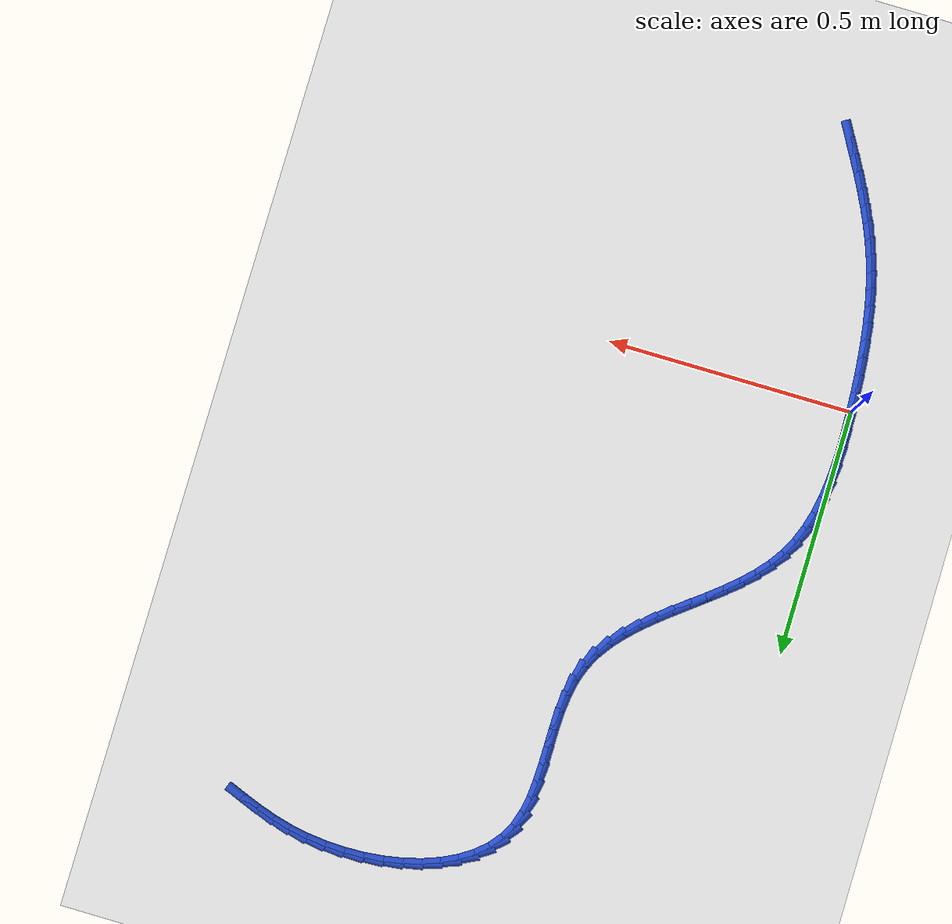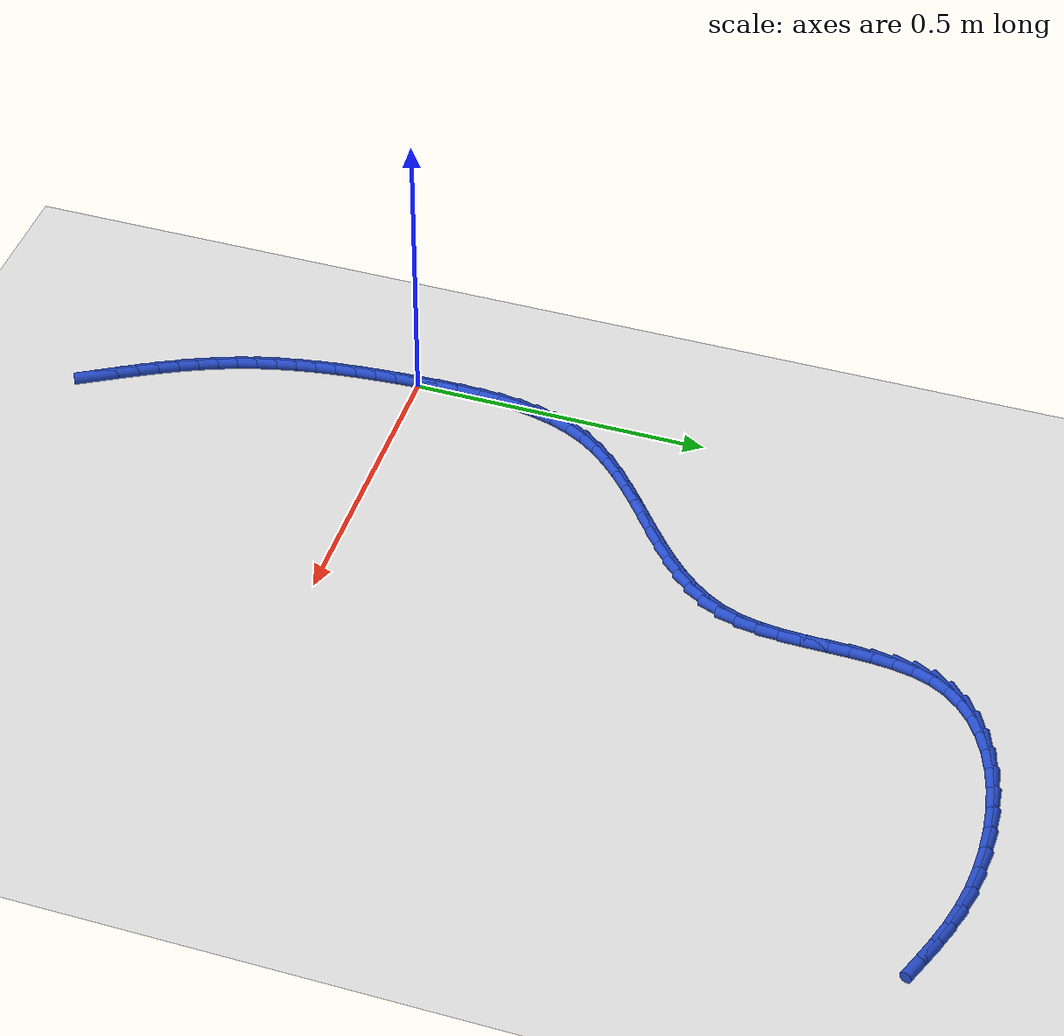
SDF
<sdf version="1.6">
 <world name="default">
  <model name="ground_plane">
   <static>1</static>
   <link name="link">
    <collision name="collision">
     <geometry><plane><normal>0 0 1</normal><size>100 100</size></plane></geometry>
     <surface><friction><ode><mu>100</mu><mu2>50</mu2></ode></friction></surface>
    </collision>
    <visual name="visual">
     <cast_shadows>0</cast_shadows>
     <geometry><plane><normal>0 0 1</normal><size>100 100</size></plane></geometry>
     <material>
      <script><uri>file://media/materials/scripts/gazebo.material</uri><name>Gazebo/WhiteGlow</name></script>
     </material>
    </visual>
   </link>
  </model>
  <model name="line">
   <link name="link_0">
    <pose>9.269928574751063e-18 -8.326672684688674e-17 0.01 0 1.57 -1.5322040979564748</pose>
    <collision name="collision">
     <geometry><cylinder><radius>0.01</radius><length>0.08</length></cylinder></geometry>
    </collision>
    <visual name="visual">
     <material>
      <script><name>Gazebo/Blue</name><uri>file://media/materials/scripts/gazebo.material</uri></script>
     </material>
     <geometry><cylinder><radius>0.01</radius><length>0.08</length></cylinder></geometry>
    </visual>
   </link>
   <link name="link_1">
    <pose>-0.0014031627960501823 0.03634063551600718 0.01 0 1.57 -1.5551111960871016</pose>
    <collision name="collision">
     <geometry><cylinder><radius>0.01</radius><length>0.08</length></cylinder></geometry>
    </collision>
    <visual name="visual">
     <material>
      <script><name>Gazebo/Blue</name><uri>file://media/materials/scripts/gazebo.material</uri></script>
     </material>
     <geometry><cylinder><radius>0.01</radius><length>0.08</length></cylinder></geometry>
    </visual>
   </link>
   <link name="link_2">
    <pose>-0.0019743174826526277 0.07275141572233851 0.01 0 1.57 1.5534298415493895</pose>
    <collision name="collision">
     <geometry><cylinder><radius>0.01</radius><length>0.08</length></cylinder></geometry>
    </collision>
    <visual name="visual">
     <material>
      <script><name>Gazebo/Blue</name><uri>file://media/materials/scripts/gazebo.material</uri></script>
     </material>
     <geometry><cylinder><radius>0.01</radius><length>0.08</length></cylinder></geometry>
    </visual>
   </link>
   <link name="link_3">
    <pose>-0.0013451948375491857 0.10897402428306209 0.01 0 1.57 1.5094450359591003</pose>
    <collision name="collision">
     <geometry><cylinder><radius>0.01</radius><length>0.08</length></cylinder></geometry>
    </collision>
    <visual name="visual">
     <material>
      <script><name>Gazebo/Blue</name><uri>file://media/materials/scripts/gazebo.material</uri></script>
     </material>
     <geometry><cylinder><radius>0.01</radius><length>0.08</length></cylinder></geometry>
    </visual>
   </link>
   <link name="link_4">
    <pose>0.0008524743615182799 0.1447501448622461 0.01 0 1.57 1.4534500032611186</pose>
    <collision name="collision">
     <geometry><cylinder><radius>0.01</radius><length>0.08</length></cylinder></geometry>
    </collision>
    <visual name="visual">
     <material>
      <script><name>Gazebo/Blue</name><uri>file://media/materials/scripts/gazebo.material</uri></script>
     </material>
     <geometry><cylinder><radius>0.01</radius><length>0.08</length></cylinder></geometry>
    </visual>
   </link>
   <link name="link_5">
    <pose>0.0049869593368079106 0.17982146112395883 0.01 0 1.57 1.3841944477927413</pose>
    <collision name="collision">
     <geometry><cylinder><radius>0.01</radius><length>0.08</length></cylinder></geometry>
    </collision>
    <visual name="visual">
     <material>
      <script><name>Gazebo/Blue</name><uri>file://media/materials/scripts/gazebo.material</uri></script>
     </material>
     <geometry><cylinder><radius>0.01</radius><length>0.08</length></cylinder></geometry>
    </visual>
   </link>
   <link name="link_6">
    <pose>0.011426529310577839 0.21392965673226863 0.01 0 1.57 1.3004787172514183</pose>
    <collision name="collision">
     <geometry><cylinder><radius>0.01</radius><length>0.08</length></cylinder></geometry>
    </collision>
    <visual name="visual">
     <material>
      <script><name>Gazebo/Blue</name><uri>file://media/materials/scripts/gazebo.material</uri></script>
     </material>
     <geometry><cylinder><radius>0.01</radius><length>0.08</length></cylinder></geometry>
    </visual>
   </link>
   <link name="link_7">
    <pose>0.020539453505086215 0.24681641535124357 0.01 0 1.57 1.2015458215213368</pose>
    <collision name="collision">
     <geometry><cylinder><radius>0.01</radius><length>0.08</length></cylinder></geometry>
    </collision>
    <visual name="visual">
     <material>
      <script><name>Gazebo/Blue</name><uri>file://media/materials/scripts/gazebo.material</uri></script>
     </material>
     <geometry><cylinder><radius>0.01</radius><length>0.08</length></cylinder></geometry>
    </visual>
   </link>
   <link name="link_8">
    <pose>0.032694001142591154 0.27822342064495204 0.01 0 1.57 1.0876598648968587</pose>
    <collision name="collision">
     <geometry><cylinder><radius>0.01</radius><length>0.08</length></cylinder></geometry>
    </collision>
    <visual name="visual">
     <material>
      <script><name>Gazebo/Blue</name><uri>file://media/materials/scripts/gazebo.material</uri></script>
     </material>
     <geometry><cylinder><radius>0.01</radius><length>0.08</length></cylinder></geometry>
    </visual>
   </link>
   <link name="link_9">
    <pose>0.04825844144535081 0.3078923562774621 0.01 0 1.57 0.9658223907676853</pose>
    <collision name="collision">
     <geometry><cylinder><radius>0.01</radius><length>0.08</length></cylinder></geometry>
    </collision>
    <visual name="visual">
     <material>
      <script><name>Gazebo/Blue</name><uri>file://media/materials/scripts/gazebo.material</uri></script>
     </material>
     <geometry><cylinder><radius>0.01</radius><length>0.08</length></cylinder></geometry>
    </visual>
   </link>
   <link name="link_10">
    <pose>0.06745292896451253 0.3356515662217909 0.01 0 1.57 0.8614106802384787</pose>
    <collision name="collision">
     <geometry><cylinder><radius>0.01</radius><length>0.08</length></cylinder></geometry>
    </collision>
    <visual name="visual">
     <material>
      <script><name>Gazebo/Blue</name><uri>file://media/materials/scripts/gazebo.material</uri></script>
     </material>
     <geometry><cylinder><radius>0.01</radius><length>0.08</length></cylinder></geometry>
    </visual>
   </link>
   <link name="link_11">
    <pose>0.08983111288050157 0.36171935961044616 0.01 0 1.57 0.7808889226528758</pose>
    <collision name="collision">
     <geometry><cylinder><radius>0.01</radius><length>0.08</length></cylinder></geometry>
    </collision>
    <visual name="visual">
     <material>
      <script><name>Gazebo/Blue</name><uri>file://media/materials/scripts/gazebo.material</uri></script>
     </material>
     <geometry><cylinder><radius>0.01</radius><length>0.08</length></cylinder></geometry>
    </visual>
   </link>
   <link name="link_12">
    <pose>0.1147592477045748 0.38642368819137507 0.01 0 1.57 0.7226157922241102</pose>
    <collision name="collision">
     <geometry><cylinder><radius>0.01</radius><length>0.08</length></cylinder></geometry>
    </collision>
    <visual name="visual">
     <material>
      <script><name>Gazebo/Blue</name><uri>file://media/materials/scripts/gazebo.material</uri></script>
     </material>
     <geometry><cylinder><radius>0.01</radius><length>0.08</length></cylinder></geometry>
    </visual>
   </link>
   <link name="link_13">
    <pose>0.14160357787230773 0.41009250960769783 0.01 0 1.57 0.6846308907383529</pose>
    <collision name="collision">
     <geometry><cylinder><radius>0.01</radius><length>0.08</length></cylinder></geometry>
    </collision>
    <visual name="visual">
     <material>
      <script><name>Gazebo/Blue</name><uri>file://media/materials/scripts/gazebo.material</uri></script>
     </material>
     <geometry><cylinder><radius>0.01</radius><length>0.08</length></cylinder></geometry>
    </visual>
   </link>
   <link name="link_14">
    <pose>0.16973034781927573 0.43305378150253476 0.01 0 1.57 0.6653758053141456</pose>
    <collision name="collision">
     <geometry><cylinder><radius>0.01</radius><length>0.08</length></cylinder></geometry>
    </collision>
    <visual name="visual">
     <material>
      <script><name>Gazebo/Blue</name><uri>file://media/materials/scripts/gazebo.material</uri></script>
     </material>
     <geometry><cylinder><radius>0.01</radius><length>0.08</length></cylinder></geometry>
    </visual>
   </link>
   <link name="link_15">
    <pose>0.1985058019810543 0.4556354615190062 0.01 0 1.57 0.6640125981625362</pose>
    <collision name="collision">
     <geometry><cylinder><radius>0.01</radius><length>0.08</length></cylinder></geometry>
    </collision>
    <visual name="visual">
     <material>
      <script><name>Gazebo/Blue</name><uri>file://media/materials/scripts/gazebo.material</uri></script>
     </material>
     <geometry><cylinder><radius>0.01</radius><length>0.08</length></cylinder></geometry>
    </visual>
   </link>
   <link name="link_16">
    <pose>0.22729618479321892 0.47816550730023255 0.01 0 1.57 0.6805388929093404</pose>
    <collision name="collision">
     <geometry><cylinder><radius>0.01</radius><length>0.08</length></cylinder></geometry>
    </collision>
    <visual name="visual">
     <material>
      <script><name>Gazebo/Blue</name><uri>file://media/materials/scripts/gazebo.material</uri></script>
     </material>
     <geometry><cylinder><radius>0.01</radius><length>0.08</length></cylinder></geometry>
    </visual>
   </link>
   <link name="link_17">
    <pose>0.2554677406913451 0.500971876489334 0.01 0 1.57 0.7158038160591095</pose>
    <collision name="collision">
     <geometry><cylinder><radius>0.01</radius><length>0.08</length></cylinder></geometry>
    </collision>
    <visual name="visual">
     <material>
      <script><name>Gazebo/Blue</name><uri>file://media/materials/scripts/gazebo.material</uri></script>
     </material>
     <geometry><cylinder><radius>0.01</radius><length>0.08</length></cylinder></geometry>
    </visual>
   </link>
   <link name="link_18">
    <pose>0.2823867141110083 0.5243825267294309 0.01 0 1.57 0.7714296721098537</pose>
    <collision name="collision">
     <geometry><cylinder><radius>0.01</radius><length>0.08</length></cylinder></geometry>
    </collision>
    <visual name="visual">
     <material>
      <script><name>Gazebo/Blue</name><uri>file://media/materials/scripts/gazebo.material</uri></script>
     </material>
     <geometry><cylinder><radius>0.01</radius><length>0.08</length></cylinder></geometry>
    </visual>
   </link>
   <link name="link_19">
    <pose>0.3074193494877838 0.5487254156636434 0.01 0 1.57 0.8495416437112011</pose>
    <collision name="collision">
     <geometry><cylinder><radius>0.01</radius><length>0.08</length></cylinder></geometry>
    </collision>
    <visual name="visual">
     <material>
      <script><name>Gazebo/Blue</name><uri>file://media/materials/scripts/gazebo.material</uri></script>
     </material>
     <geometry><cylinder><radius>0.01</radius><length>0.08</length></cylinder></geometry>
    </visual>
   </link>
   <link name="link_20">
    <pose>0.3299318912572474 0.5743285009350921 0.01 0 1.57 0.9520978609148936</pose>
    <collision name="collision">
     <geometry><cylinder><radius>0.01</radius><length>0.08</length></cylinder></geometry>
    </collision>
    <visual name="visual">
     <material>
      <script><name>Gazebo/Blue</name><uri>file://media/materials/scripts/gazebo.material</uri></script>
     </material>
     <geometry><cylinder><radius>0.01</radius><length>0.08</length></cylinder></geometry>
    </visual>
   </link>
   <link name="link_21">
    <pose>0.34929058385497425 0.601519740186897 0.01 0 1.57 1.079578243119373</pose>
    <collision name="collision">
     <geometry><cylinder><radius>0.01</radius><length>0.08</length></cylinder></geometry>
    </collision>
    <visual name="visual">
     <material>
      <script><name>Gazebo/Blue</name><uri>file://media/materials/scripts/gazebo.material</uri></script>
     </material>
     <geometry><cylinder><radius>0.01</radius><length>0.08</length></cylinder></geometry>
    </visual>
   </link>
   <link name="link_22">
    <pose>0.36486167171654 0.6306270910621787 0.01 0 1.57 1.2282904424377823</pose>
    <collision name="collision">
     <geometry><cylinder><radius>0.01</radius><length>0.08</length></cylinder></geometry>
    </collision>
    <visual name="visual">
     <material>
      <script><name>Gazebo/Blue</name><uri>file://media/materials/scripts/gazebo.material</uri></script>
     </material>
     <geometry><cylinder><radius>0.01</radius><length>0.08</length></cylinder></geometry>
    </visual>
   </link>
   <link name="link_23">
    <pose>0.3760356930462408 0.6619655978491316 0.01 0 1.57 1.367348351773009</pose>
    <collision name="collision">
     <geometry><cylinder><radius>0.01</radius><length>0.08</length></cylinder></geometry>
    </collision>
    <visual name="visual">
     <material>
      <script><name>Gazebo/Blue</name><uri>file://media/materials/scripts/gazebo.material</uri></script>
     </material>
     <geometry><cylinder><radius>0.01</radius><length>0.08</length></cylinder></geometry>
    </visual>
   </link>
   <link name="link_24">
    <pose>0.3829448521581526 0.6954560721492837 0.01 0 1.57 1.4675712158796776</pose>
    <collision name="collision">
     <geometry><cylinder><radius>0.01</radius><length>0.08</length></cylinder></geometry>
    </collision>
    <visual name="visual">
     <material>
      <script><name>Gazebo/Blue</name><uri>file://media/materials/scripts/gazebo.material</uri></script>
     </material>
     <geometry><cylinder><radius>0.01</radius><length>0.08</length></cylinder></geometry>
    </visual>
   </link>
   <link name="link_25">
    <pose>0.3865815981031795 0.7305620623977352 0.01 0 1.57 1.5319614249728721</pose>
    <collision name="collision">
     <geometry><cylinder><radius>0.01</radius><length>0.08</length></cylinder></geometry>
    </collision>
    <visual name="visual">
     <material>
      <script><name>Gazebo/Blue</name><uri>file://media/materials/scripts/gazebo.material</uri></script>
     </material>
     <geometry><cylinder><radius>0.01</radius><length>0.08</length></cylinder></geometry>
    </visual>
   </link>
   <link name="link_26">
    <pose>0.3879865530885565 0.7667215105840509 0.01 0 1.57 1.5649633428570273</pose>
    <collision name="collision">
     <geometry><cylinder><radius>0.01</radius><length>0.08</length></cylinder></geometry>
    </collision>
    <visual name="visual">
     <material>
      <script><name>Gazebo/Blue</name><uri>file://media/materials/scripts/gazebo.material</uri></script>
     </material>
     <geometry><cylinder><radius>0.01</radius><length>0.08</length></cylinder></geometry>
    </visual>
   </link>
   <link name="link_27">
    <pose>0.38820033932151843 0.8033723586977951 0.01 0 1.57 1.569067532474074</pose>
    <collision name="collision">
     <geometry><cylinder><radius>0.01</radius><length>0.08</length></cylinder></geometry>
    </collision>
    <visual name="visual">
     <material>
      <script><name>Gazebo/Blue</name><uri>file://media/materials/scripts/gazebo.material</uri></script>
     </material>
     <geometry><cylinder><radius>0.01</radius><length>0.08</length></cylinder></geometry>
    </visual>
   </link>
   <link name="link_28">
    <pose>0.3882635790093003 0.8399525487285324 0.01 0 1.57 1.5442828655423926</pose>
    <collision name="collision">
     <geometry><cylinder><radius>0.01</radius><length>0.08</length></cylinder></geometry>
    </collision>
    <visual name="visual">
     <material>
      <script><name>Gazebo/Blue</name><uri>file://media/materials/scripts/gazebo.material</uri></script>
     </material>
     <geometry><cylinder><radius>0.01</radius><length>0.08</length></cylinder></geometry>
    </visual>
   </link>
   <link name="link_29">
    <pose>0.38921689435913703 0.8759000226658278 0.01 0 1.57 1.4879993091222576</pose>
    <collision name="collision">
     <geometry><cylinder><radius>0.01</radius><length>0.08</length></cylinder></geometry>
    </collision>
    <visual name="visual">
     <material>
      <script><name>Gazebo/Blue</name><uri>file://media/materials/scripts/gazebo.material</uri></script>
     </material>
     <geometry><cylinder><radius>0.01</radius><length>0.08</length></cylinder></geometry>
    </visual>
   </link>
   <link name="link_30">
    <pose>0.3921009075782636 0.9106527224992458 0.01 0 1.57 1.3951680918966898</pose>
    <collision name="collision">
     <geometry><cylinder><radius>0.01</radius><length>0.08</length></cylinder></geometry>
    </collision>
    <visual name="visual">
     <material>
      <script><name>Gazebo/Blue</name><uri>file://media/materials/scripts/gazebo.material</uri></script>
     </material>
     <geometry><cylinder><radius>0.01</radius><length>0.08</length></cylinder></geometry>
    </visual>
   </link>
   <link name="link_31">
    <pose>0.39795624087391496 0.9436485902183511 0.01 0 1.57 1.259596605212832</pose>
    <collision name="collision">
     <geometry><cylinder><radius>0.01</radius><length>0.08</length></cylinder></geometry>
    </collision>
    <visual name="visual">
     <material>
      <script><name>Gazebo/Blue</name><uri>file://media/materials/scripts/gazebo.material</uri></script>
     </material>
     <geometry><cylinder><radius>0.01</radius><length>0.08</length></cylinder></geometry>
    </visual>
   </link>
   <link name="link_32">
    <pose>0.40782351645332593 0.9743255678127083 0.01 0 1.57 1.0803814110568757</pose>
    <collision name="collision">
     <geometry><cylinder><radius>0.01</radius><length>0.08</length></cylinder></geometry>
    </collision>
    <visual name="visual">
     <material>
      <script><name>Gazebo/Blue</name><uri>file://media/materials/scripts/gazebo.material</uri></script>
     </material>
     <geometry><cylinder><radius>0.01</radius><length>0.08</length></cylinder></geometry>
    </visual>
   </link>
   <link name="link_33">
    <pose>0.4226773873524218 1.0021459094666414 0.01 0 1.57 0.8931537006835075</pose>
    <collision name="collision">
     <geometry><cylinder><radius>0.01</radius><length>0.08</length></cylinder></geometry>
    </collision>
    <visual name="visual">
     <material>
      <script><name>Gazebo/Blue</name><uri>file://media/materials/scripts/gazebo.material</uri></script>
     </material>
     <geometry><cylinder><radius>0.01</radius><length>0.08</length></cylinder></geometry>
    </visual>
   </link>
   <link name="link_34">
    <pose>0.4425995147955887 1.026900971434573 0.01 0 1.57 0.7266991034931036</pose>
    <collision name="collision">
     <geometry><cylinder><radius>0.01</radius><length>0.08</length></cylinder></geometry>
    </collision>
    <visual name="visual">
     <material>
      <script><name>Gazebo/Blue</name><uri>file://media/materials/scripts/gazebo.material</uri></script>
     </material>
     <geometry><cylinder><radius>0.01</radius><length>0.08</length></cylinder></geometry>
    </visual>
   </link>
   <link name="link_35">
    <pose>0.4670292913351283 1.048618810853073 0.01 0 1.57 0.5832376141481203</pose>
    <collision name="collision">
     <geometry><cylinder><radius>0.01</radius><length>0.08</length></cylinder></geometry>
    </collision>
    <visual name="visual">
     <material>
      <script><name>Gazebo/Blue</name><uri>file://media/materials/scripts/gazebo.material</uri></script>
     </material>
     <geometry><cylinder><radius>0.01</radius><length>0.08</length></cylinder></geometry>
    </visual>
   </link>
   <link name="link_36">
    <pose>0.49539199859865535 1.067332685281007 0.01 0 1.57 0.4606851171406325</pose>
    <collision name="collision">
     <geometry><cylinder><radius>0.01</radius><length>0.08</length></cylinder></geometry>
    </collision>
    <visual name="visual">
     <material>
      <script><name>Gazebo/Blue</name><uri>file://media/materials/scripts/gazebo.material</uri></script>
     </material>
     <geometry><cylinder><radius>0.01</radius><length>0.08</length></cylinder></geometry>
    </visual>
   </link>
   <link name="link_37">
    <pose>0.5271129182137849 1.0830758522772401 0.01 0 1.57 0.3553758814538861</pose>
    <collision name="collision">
     <geometry><cylinder><radius>0.01</radius><length>0.08</length></cylinder></geometry>
    </collision>
    <visual name="visual">
     <material>
      <script><name>Gazebo/Blue</name><uri>file://media/materials/scripts/gazebo.material</uri></script>
     </material>
     <geometry><cylinder><radius>0.01</radius><length>0.08</length></cylinder></geometry>
    </visual>
   </link>
   <link name="link_38">
    <pose>0.5616173318081314 1.0958815694006372 0.01 0 1.57 0.2634316306784564</pose>
    <collision name="collision">
     <geometry><cylinder><radius>0.01</radius><length>0.08</length></cylinder></geometry>
    </collision>
    <visual name="visual">
     <material>
      <script><name>Gazebo/Blue</name><uri>file://media/materials/scripts/gazebo.material</uri></script>
     </material>
     <geometry><cylinder><radius>0.01</radius><length>0.08</length></cylinder></geometry>
    </visual>
   </link>
   <link name="link_39">
    <pose>0.59833052100931 1.105783094210063 0.01 0 1.57 0.1813263729452793</pose>
    <collision name="collision">
     <geometry><cylinder><radius>0.01</radius><length>0.08</length></cylinder></geometry>
    </collision>
    <visual name="visual">
     <material>
      <script><name>Gazebo/Blue</name><uri>file://media/materials/scripts/gazebo.material</uri></script>
     </material>
     <geometry><cylinder><radius>0.01</radius><length>0.08</length></cylinder></geometry>
    </visual>
   </link>
   <link name="link_40">
    <pose>0.636677767444935 1.1128136842643828 0.01 0 1.57 0.10600249813779578</pose>
    <collision name="collision">
     <geometry><cylinder><radius>0.01</radius><length>0.08</length></cylinder></geometry>
    </collision>
    <visual name="visual">
     <material>
      <script><name>Gazebo/Blue</name><uri>file://media/materials/scripts/gazebo.material</uri></script>
     </material>
     <geometry><cylinder><radius>0.01</radius><length>0.08</length></cylinder></geometry>
    </visual>
   </link>
   <link name="link_41">
    <pose>0.6760843527426215 1.1170065971224616 0.01 0 1.57 0.03479295418843869</pose>
    <collision name="collision">
     <geometry><cylinder><radius>0.01</radius><length>0.08</length></cylinder></geometry>
    </collision>
    <visual name="visual">
     <material>
      <script><name>Gazebo/Blue</name><uri>file://media/materials/scripts/gazebo.material</uri></script>
     </material>
     <geometry><cylinder><radius>0.01</radius><length>0.08</length></cylinder></geometry>
    </visual>
   </link>
   <link name="link_42">
    <pose>0.7159755585299838 1.1183950903431639 0.01 0 1.57 -0.03472549176726358</pose>
    <collision name="collision">
     <geometry><cylinder><radius>0.01</radius><length>0.08</length></cylinder></geometry>
    </collision>
    <visual name="visual">
     <material>
      <script><name>Gazebo/Blue</name><uri>file://media/materials/scripts/gazebo.material</uri></script>
     </material>
     <geometry><cylinder><radius>0.01</radius><length>0.08</length></cylinder></geometry>
    </visual>
   </link>
   <link name="link_43">
    <pose>0.7557766664346373 1.117012421485355 0.01 0 1.57 -0.10490129377826278</pose>
    <collision name="collision">
     <geometry><cylinder><radius>0.01</radius><length>0.08</length></cylinder></geometry>
    </collision>
    <visual name="visual">
     <material>
      <script><name>Gazebo/Blue</name><uri>file://media/materials/scripts/gazebo.material</uri></script>
     </material>
     <geometry><cylinder><radius>0.01</radius><length>0.08</length></cylinder></geometry>
    </visual>
   </link>
   <link name="link_44">
    <pose>0.7949129580841965 1.1128918481079002 0.01 0 1.57 -0.17819016622875455</pose>
    <collision name="collision">
     <geometry><cylinder><radius>0.01</radius><length>0.08</length></cylinder></geometry>
    </collision>
    <visual name="visual">
     <material>
      <script><name>Gazebo/Blue</name><uri>file://media/materials/scripts/gazebo.material</uri></script>
     </material>
     <geometry><cylinder><radius>0.01</radius><length>0.08</length></cylinder></geometry>
    </visual>
   </link>
   <link name="link_45">
    <pose>0.8328097151062761 1.1060666277696636 0.01 0 1.57 -0.254091544635744</pose>
    <collision name="collision">
     <geometry><cylinder><radius>0.01</radius><length>0.08</length></cylinder></geometry>
    </collision>
    <visual name="visual">
     <material>
      <script><name>Gazebo/Blue</name><uri>file://media/materials/scripts/gazebo.material</uri></script>
     </material>
     <geometry><cylinder><radius>0.01</radius><length>0.08</length></cylinder></geometry>
    </visual>
   </link>
   <link name="link_46">
    <pose>0.86900593768435 1.0966662944829169 0.01 0 1.57 -0.3166018478970904</pose>
    <collision name="collision">
     <geometry><cylinder><radius>0.01</radius><length>0.08</length></cylinder></geometry>
    </collision>
    <visual name="visual">
     <material>
      <script><name>Gazebo/Blue</name><uri>file://media/materials/scripts/gazebo.material</uri></script>
     </material>
     <geometry><cylinder><radius>0.01</radius><length>0.08</length></cylinder></geometry>
    </visual>
   </link>
   <link name="link_47">
    <pose>0.9036328284124631 1.0853217529232981 0.01 0 1.57 -0.3581747486524444</pose>
    <collision name="collision">
     <geometry><cylinder><radius>0.01</radius><length>0.08</length></cylinder></geometry>
    </collision>
    <visual name="visual">
     <material>
      <script><name>Gazebo/Blue</name><uri>file://media/materials/scripts/gazebo.material</uri></script>
     </material>
     <geometry><cylinder><radius>0.01</radius><length>0.08</length></cylinder></geometry>
    </visual>
   </link>
   <link name="link_48">
    <pose>0.9370137480322254 1.072826592781226 0.01 0 1.57 -0.377015366398424</pose>
    <collision name="collision">
     <geometry><cylinder><radius>0.01</radius><length>0.08</length></cylinder></geometry>
    </collision>
    <visual name="visual">
     <material>
      <script><name>Gazebo/Blue</name><uri>file://media/materials/scripts/gazebo.material</uri></script>
     </material>
     <geometry><cylinder><radius>0.01</radius><length>0.08</length></cylinder></geometry>
    </visual>
   </link>
   <link name="link_184">
    <pose>0.1528562650924382 -0.5219936855803561 0.01 0 1.57 -1.0503761138642365</pose>
    <collision name="collision">
     <geometry><cylinder><radius>0.01</radius><length>0.08</length></cylinder></geometry>
    </collision>
    <visual name="visual">
     <material>
      <script><name>Gazebo/Blue</name><uri>file://media/materials/scripts/gazebo.material</uri></script>
     </material>
     <geometry><cylinder><radius>0.01</radius><length>0.08</length></cylinder></geometry>
    </visual>
   </link>
   <link name="link_185">
    <pose>0.13522554438578058 -0.49123097843923397 0.01 0 1.57 -1.0620037547566452</pose>
    <collision name="collision">
     <geometry><cylinder><radius>0.01</radius><length>0.08</length></cylinder></geometry>
    </collision>
    <visual name="visual">
     <material>
      <script><name>Gazebo/Blue</name><uri>file://media/materials/scripts/gazebo.material</uri></script>
     </material>
     <geometry><cylinder><radius>0.01</radius><length>0.08</length></cylinder></geometry>
    </visual>
   </link>
   <link name="link_186">
    <pose>0.1182582183862606 -0.4608112949571988 0.01 0 1.57 -1.0802414377897878</pose>
    <collision name="collision">
     <geometry><cylinder><radius>0.01</radius><length>0.08</length></cylinder></geometry>
    </collision>
    <visual name="visual">
     <material>
      <script><name>Gazebo/Blue</name><uri>file://media/materials/scripts/gazebo.material</uri></script>
     </material>
     <geometry><cylinder><radius>0.01</radius><length>0.08</length></cylinder></geometry>
    </visual>
   </link>
   <link name="link_187">
    <pose>0.1021014397612168 -0.4305608832031602 0.01 0 1.57 -1.105256402501052</pose>
    <collision name="collision">
     <geometry><cylinder><radius>0.01</radius><length>0.08</length></cylinder></geometry>
    </collision>
    <visual name="visual">
     <material>
      <script><name>Gazebo/Blue</name><uri>file://media/materials/scripts/gazebo.material</uri></script>
     </material>
     <geometry><cylinder><radius>0.01</radius><length>0.08</length></cylinder></geometry>
    </visual>
   </link>
   <link name="link_188">
    <pose>0.08690236117798752 -0.40030599124602834 0.01 0 1.57 -1.1370845180768157</pose>
    <collision name="collision">
     <geometry><cylinder><radius>0.01</radius><length>0.08</length></cylinder></geometry>
    </collision>
    <visual name="visual">
     <material>
      <script><name>Gazebo/Blue</name><uri>file://media/materials/scripts/gazebo.material</uri></script>
     </material>
     <geometry><cylinder><radius>0.01</radius><length>0.08</length></cylinder></geometry>
    </visual>
   </link>
   <link name="link_189">
    <pose>0.07280813530391125 -0.3698728671547128 0.01 0 1.57 -1.1755875603109296</pose>
    <collision name="collision">
     <geometry><cylinder><radius>0.01</radius><length>0.08</length></cylinder></geometry>
    </collision>
    <visual name="visual">
     <material>
      <script><name>Gazebo/Blue</name><uri>file://media/materials/scripts/gazebo.material</uri></script>
     </material>
     <geometry><cylinder><radius>0.01</radius><length>0.08</length></cylinder></geometry>
    </visual>
   </link>
   <link name="link_190">
    <pose>0.059965914806326424 -0.3390877589981233 0.01 0 1.57 -1.2204098398996057</pose>
    <collision name="collision">
     <geometry><cylinder><radius>0.01</radius><length>0.08</length></cylinder></geometry>
    </collision>
    <visual name="visual">
     <material>
      <script><name>Gazebo/Blue</name><uri>file://media/materials/scripts/gazebo.material</uri></script>
     </material>
     <geometry><cylinder><radius>0.01</radius><length>0.08</length></cylinder></geometry>
    </visual>
   </link>
   <link name="link_191">
    <pose>0.04852284967506041 -0.307776916997455 0.01 0 1.57 -1.269170329228974</pose>
    <collision name="collision">
     <geometry><cylinder><radius>0.01</radius><length>0.08</length></cylinder></geometry>
    </collision>
    <visual name="visual">
     <material>
      <script><name>Gazebo/Blue</name><uri>file://media/materials/scripts/gazebo.material</uri></script>
     </material>
     <geometry><cylinder><radius>0.01</radius><length>0.08</length></cylinder></geometry>
    </visual>
   </link>
   <link name="link_192">
    <pose>0.03857629164868678 -0.2758066210956061 0.01 0 1.57 -1.315040989557961</pose>
    <collision name="collision">
     <geometry><cylinder><radius>0.01</radius><length>0.08</length></cylinder></geometry>
    </collision>
    <visual name="visual">
     <material>
      <script><name>Gazebo/Blue</name><uri>file://media/materials/scripts/gazebo.material</uri></script>
     </material>
     <geometry><cylinder><radius>0.01</radius><length>0.08</length></cylinder></geometry>
    </visual>
   </link>
   <link name="link_193">
    <pose>0.03004647535748206 -0.24318552467983018 0.01 0 1.57 -1.3565075629512726</pose>
    <collision name="collision">
     <geometry><cylinder><radius>0.01</radius><length>0.08</length></cylinder></geometry>
    </collision>
    <visual name="visual">
     <material>
      <script><name>Gazebo/Blue</name><uri>file://media/materials/scripts/gazebo.material</uri></script>
     </material>
     <geometry><cylinder><radius>0.01</radius><length>0.08</length></cylinder></geometry>
    </visual>
   </link>
   <link name="link_194">
    <pose>0.022814275445449034 -0.20995392018608655 0.01 0 1.57 -1.3935809300416937</pose>
    <collision name="collision">
     <geometry><cylinder><radius>0.01</radius><length>0.08</length></cylinder></geometry>
    </collision>
    <visual name="visual">
     <material>
      <script><name>Gazebo/Blue</name><uri>file://media/materials/scripts/gazebo.material</uri></script>
     </material>
     <geometry><cylinder><radius>0.01</radius><length>0.08</length></cylinder></geometry>
    </visual>
   </link>
   <link name="link_195">
    <pose>0.016760566556590285 -0.1761521000503342 0.01 0 1.57 -1.4263366328478644</pose>
    <collision name="collision">
     <geometry><cylinder><radius>0.01</radius><length>0.08</length></cylinder></geometry>
    </collision>
    <visual name="visual">
     <material>
      <script><name>Gazebo/Blue</name><uri>file://media/materials/scripts/gazebo.material</uri></script>
     </material>
     <geometry><cylinder><radius>0.01</radius><length>0.08</length></cylinder></geometry>
    </visual>
   </link>
   <link name="link_196">
    <pose>0.011766223334908359 -0.14182035670853194 0.01 0 1.57 -1.4548924358433168</pose>
    <collision name="collision">
     <geometry><cylinder><radius>0.01</radius><length>0.08</length></cylinder></geometry>
    </collision>
    <visual name="visual">
     <material>
      <script><name>Gazebo/Blue</name><uri>file://media/materials/scripts/gazebo.material</uri></script>
     </material>
     <geometry><cylinder><radius>0.01</radius><length>0.08</length></cylinder></geometry>
    </visual>
   </link>
   <link name="link_197">
    <pose>0.007712120424405805 -0.10699898259663848 0.01 0 1.57 -1.4793896427531072</pose>
    <collision name="collision">
     <geometry><cylinder><radius>0.01</radius><length>0.08</length></cylinder></geometry>
    </collision>
    <visual name="visual">
     <material>
      <script><name>Gazebo/Blue</name><uri>file://media/materials/scripts/gazebo.material</uri></script>
     </material>
     <geometry><cylinder><radius>0.01</radius><length>0.08</length></cylinder></geometry>
    </visual>
   </link>
   <link name="link_198">
    <pose>0.004479132469085191 -0.07172827015061284 0.01 0 1.57 -1.4999784198348587</pose>
    <collision name="collision">
     <geometry><cylinder><radius>0.01</radius><length>0.08</length></cylinder></geometry>
    </collision>
    <visual name="visual">
     <material>
      <script><name>Gazebo/Blue</name><uri>file://media/materials/scripts/gazebo.material</uri></script>
     </material>
     <geometry><cylinder><radius>0.01</radius><length>0.08</length></cylinder></geometry>
    </visual>
   </link>
   <link name="link_199">
    <pose>0.00194813411294907 -0.03604851180641372 0.01 0 1.57 -1.516806833251036</pose>
    <collision name="collision">
     <geometry><cylinder><radius>0.01</radius><length>0.08</length></cylinder></geometry>
    </collision>
    <visual name="visual">
     <material>
      <script><name>Gazebo/Blue</name><uri>file://media/materials/scripts/gazebo.material</uri></script>
     </material>
     <geometry><cylinder><radius>0.01</radius><length>0.08</length></cylinder></geometry>
    </visual>
   </link>
   <link name="link_200">
    <pose>3.903127820947816e-18 -2.0816681711721685e-17 0.01 0 1.57 -1.5300130501004932</pose>
    <collision name="collision">
     <geometry><cylinder><radius>0.01</radius><length>0.08</length></cylinder></geometry>
    </collision>
    <visual name="visual">
     <material>
      <script><name>Gazebo/Blue</name><uri>file://media/materials/scripts/gazebo.material</uri></script>
     </material>
     <geometry><cylinder><radius>0.01</radius><length>0.08</length></cylinder></geometry>
    </visual>
   </link>
   <link name="link_201">
    <pose>-0.0014843952257594809 0.03637697283267025 0.01 0 1.57 -1.5300130501004932</pose>
    <collision name="collision">
     <geometry><cylinder><radius>0.01</radius><length>0.08</length></cylinder></geometry>
    </collision>
    <visual name="visual">
     <material>
      <script><name>Gazebo/Blue</name><uri>file://media/materials/scripts/gazebo.material</uri></script>
     </material>
     <geometry><cylinder><radius>0.01</radius><length>0.08</length></cylinder></geometry>
    </visual>
   </link>
  </model>
 </world>
</sdf>
